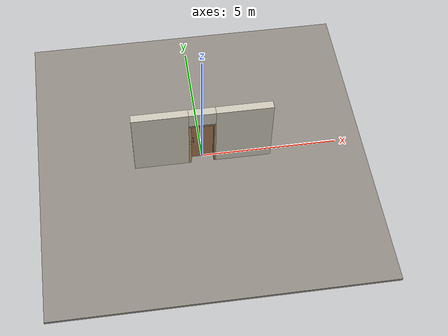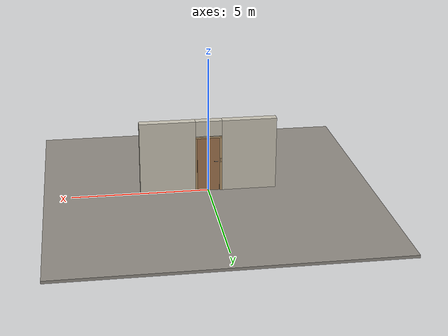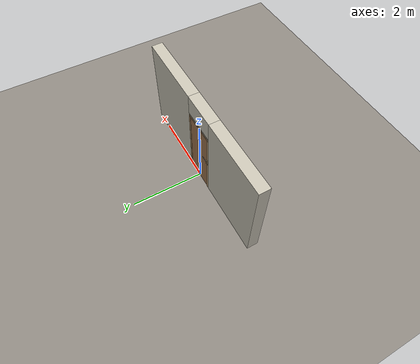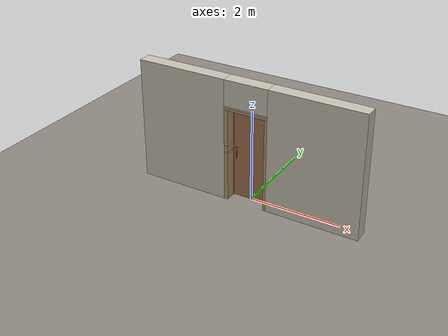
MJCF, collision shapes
<?xml version="1.0" ?>
<mujoco model="db0243_swing_single_minimal">
  <compiler angle="radian" meshdir="../../hardware" texturedir="../../textures" autolimits="true" inertiafromgeom="false"/>
  <option timestep="0.002" integrator="implicitfast" cone="elliptic" impratio="10" noslip_iterations="3">
    <flag multiccd="enable"/>
  </option>
  <size memory="16M"/>
  <default>
    <geom condim="4" solref="0.005 1" solimp="0.95 0.99 0.001"/>
    <joint solreflimit="0.005 1" solimplimit="0.95 0.99 0.001"/>
    <tendon solreflimit="0.005 1"/>
    <equality solref="0.002 1"/>
  </default>
  <visual>
    <headlight ambient="0.4 0.4 0.4" diffuse="0.7 0.7 0.7" specular="0.2 0.2 0.2"/>
    <quality shadowsize="4096"/>
    <map znear="0.01" zfar="60"/>
  </visual>
  <asset>
    <mesh name="thumb_latch_0073ea78ed" file="thumb_latch_0073ea78ed.obj"/>
    <material name="mat_floor" rgba="0.55 0.53 0.5 1" specular="0.2" shininess="0.15" reflectance="0"/>
    <material name="mat_wall" rgba="0.78 0.76 0.7 1" specular="0.2" shininess="0.1" reflectance="0"/>
    <material name="mat_leaf" rgba="0.62 0.45 0.3 1" specular="0.2" shininess="0.5" reflectance="0"/>
    <material name="mat_leaf_brace" rgba="0.558 0.405 0.27 1" specular="0.2" shininess="0.2" reflectance="0"/>
    <material name="mat_hinge" rgba="0.65 0.66 0.68 1" specular="0.74" shininess="0.5" reflectance="0.36"/>
    <material name="mat_op_wrought_iron" rgba="0.08 0.08 0.09 1" specular="0.56" shininess="0.25" reflectance="0.24"/>
    <material name="mat_frame" rgba="0.7 0.58 0.42 1" specular="0.2" shininess="0.5" reflectance="0"/>
    <material name="mat_peephole" rgba="0.85 0.66 0.3 1" specular="0.8" shininess="0.75" reflectance="0.4"/>
    <texture name="skybox" type="skybox" builtin="gradient" rgb1="0.6 0.7 0.85" rgb2="0.9 0.92 0.95" width="256" height="256"/>
  </asset>
  <worldbody>
    <light name="sun" pos="1.5 -2.5 4" dir="-0.3 0.5 -0.8" directional="true" diffuse="0.8 0.8 0.8" specular="0.3 0.3 0.3" castshadow="true"/>
    <light name="fill" pos="-1.5 2.5 3" dir="0.3 -0.5 -0.7" directional="true" diffuse="0.35 0.35 0.4" castshadow="false"/>
    <camera name="robot_view" pos="0 -2.663187 1.734312" xyaxes="1 0 0 0 0.26963 0.962964" fovy="52"/>
    <camera name="far_view" pos="0 2.421187 1.734312" xyaxes="-1 0 0 0 -0.26963 0.962964" fovy="52"/>
    <camera name="iso" pos="-1.932062 -2.256438 2.141063" xyaxes="0.741536 -0.670913 0 0.242917 0.268487 0.932151" fovy="46"/>
    <camera name="detail_handle" pos="-0.1455 -0.857 1.28" xyaxes="0.97561 0.219512 0 -0.070934 0.315262 0.94635" fovy="38"/>
    <geom name="floor" type="box" size="6 6 0.05" pos="0 0 -0.05" material="mat_floor" group="0" contype="1" conaffinity="1" friction="0.8 0.005 0.0001" density="2400"/>
    <geom name="wall_left" type="box" size="0.99975 0.15 1.35" pos="-1.50025 -0.121 1.35" material="mat_wall" group="0" contype="1" conaffinity="1" friction="0.6 0.005 0.0001" density="800"/>
    <geom name="wall_right" type="box" size="1.01475 0.15 1.35" pos="1.48525 -0.121 1.35" material="mat_wall" group="0" contype="1" conaffinity="1" friction="0.6 0.005 0.0001" density="800"/>
    <geom name="wall_header" type="box" size="0.4855 0.15 0.2825" pos="-0.015 -0.121 2.4175" material="mat_wall" group="0" contype="1" conaffinity="1" friction="0.6 0.005 0.0001" density="800"/>
    <geom name="jamb_hinge" type="box" size="0.03 0.15 1.0225" pos="0.4405 -0.121 1.0225" material="mat_frame" group="0" contype="1" conaffinity="1" friction="0.6 0.005 0.0001" density="750"/>
    <geom name="strike_1185_wall_n" type="box" size="0.045 0.1475 0.07" pos="-0.4555 -0.1235 1.185" material="mat_frame" group="0" contype="1" conaffinity="1" friction="0.6 0.005 0.0001" density="750"/>
    <geom name="strike_1185_wall_p" type="box" size="0.015 0.003 0.07" pos="-0.4255 0.047 1.185" material="mat_frame" group="0" contype="1" conaffinity="1" friction="0.6 0.005 0.0001" density="750"/>
    <geom name="strike_1185_back" type="box" size="0.035 0.01 0.07" pos="-0.4655 0.034 1.185" material="mat_frame" group="0" contype="1" conaffinity="1" friction="0.6 0.005 0.0001" density="750"/>
    <geom name="jamb_strike_0" type="box" size="0.045 0.15 0.5575" pos="-0.4555 -0.121 0.5575" material="mat_frame" group="0" contype="1" conaffinity="1" friction="0.6 0.005 0.0001" density="750"/>
    <geom name="jamb_strike_1" type="box" size="0.045 0.15 0.395" pos="-0.4555 -0.121 1.65" material="mat_frame" group="0" contype="1" conaffinity="1" friction="0.6 0.005 0.0001" density="750"/>
    <geom name="jamb_head" type="box" size="0.4855 0.15 0.03" pos="-0.015 -0.121 2.075" material="mat_frame" group="0" contype="1" conaffinity="1" friction="0.6 0.005 0.0001" density="750"/>
    <geom name="head_stud" type="box" size="0.4855 0.15 0.015" pos="-0.015 -0.121 2.12" material="mat_wall" group="0" contype="1" conaffinity="1" friction="0.6 0.005 0.0001" density="500"/>
    <geom name="stop_hinge" type="box" size="0.0055 0.016 1.0225" pos="0.405 -0.0385 1.0225" material="mat_frame" group="0" contype="1" conaffinity="1" friction="0.6 0.005 0.0001" density="750"/>
    <geom name="stop_strike" type="box" size="0.0055 0.016 1.0225" pos="-0.405 -0.0385 1.0225" material="mat_frame" group="0" contype="1" conaffinity="1" friction="0.6 0.005 0.0001" density="750"/>
    <geom name="stop_head" type="box" size="0.4105 0.016 0.0055" pos="0 -0.0385 2.0395" material="mat_frame" group="0" contype="1" conaffinity="1" friction="0.6 0.005 0.0001" density="750"/>
    <site name="approach_point" pos="0 -1.5 0" quat="1 0 0 0" size="0.05" rgba="0.2 0.9 0.2 0.5" group="4"/>
    <site name="goal_point" pos="0 1.5 0" quat="1 0 0 0" size="0.05" rgba="0.2 0.9 0.2 0.5" group="4"/>
    <site name="door_plane_center" pos="0 0 1.0225" quat="1 0 0 0" size="0.02" rgba="0.2 0.9 0.2 0.5" group="4"/>
    <body name="leaf" pos="0.4105 0 0">
      <inertial pos="-0.414547 -0.000647 1.024614" mass="52.903629" quat="0.499186 0.501031 -0.498944 0.500835" diaginertia="2.964817432 17.936348464 20.881238766"/>
      <joint name="leaf_hinge" type="hinge" axis="0 0 -1" pos="-0.003 0.029 0" limited="true" range="0 1.396263" damping="0.210326" frictionloss="8.492064" armature="0.02"/>
      <geom name="leaf_slab" type="box" size="0.4065 0.022 1.016" pos="-0.4095 0 1.025" material="mat_leaf" group="0" contype="1" conaffinity="1" friction="0.4 0.005 0.0001" density="1"/>
      <geom name="leaf_suffolk_grip" type="mesh" mesh="thumb_latch_0073ea78ed" pos="-0.736 -0.022 1" quat="0 0 -0.707107 0.707107" material="mat_op_wrought_iron" group="1" contype="0" conaffinity="0" density="7000"/>
      <geom name="leaf_suffolk_grip_col" type="capsule" size="0.008 0.09" pos="-0.736 -0.057 1" material="mat_op_wrought_iron" group="3" contype="1" conaffinity="1" rgba="0.8 0.3 0.3 0.25" friction="0.7 0.01 0.0001" density="7000"/>
      <site name="leaf_grip_n" pos="-0.736 -0.057 1" quat="1 0 0 0" size="0.012" rgba="0.2 0.9 0.2 0.5" group="4"/>
      <site name="leaf_edge_mid" pos="-0.816 0 1.016" quat="1 0 0 0" size="0.02" rgba="0.2 0.9 0.2 0.5" group="4"/>
      <body name="leaf_thumb" pos="-0.736 -0.022 1.145">
        <inertial pos="0 -0.02 0" mass="0.03528" quat="1 0 0 0" diaginertia="0.000002411 0.000002752 0.000004951"/>
        <joint name="leaf_thumb_hinge" type="hinge" axis="1 0 0" limited="true" range="0 0.3" damping="0.155346" frictionloss="0.032" stiffness="0.6" springref="-0.5" armature="0.01"/>
        <geom name="leaf_thumb_geom" type="box" size="0.015 0.014 0.003" pos="0 -0.02 0" material="mat_op_wrought_iron" group="0" contype="1" conaffinity="1" friction="0.6 0.005 0.0001" density="7000"/>
        <site name="leaf_thumb_push" pos="0 -0.024 0.005" quat="1 0 0 0" size="0.01" rgba="0.2 0.9 0.2 0.5" group="4"/>
      </body>
      <body name="leaf_latch_bar" pos="-0.616 0.034 1.14">
        <inertial pos="-0.106 0 0" mass="0.25" quat="0 0 -0.707107 0.707107" diaginertia="0.000004465 0.000904065 0.000904065"/>
        <joint name="leaf_latch_bar_hinge" type="hinge" axis="0 1 0" limited="true" range="0 0.6" damping="0.01" frictionloss="0.01" armature="0.005"/>
        <geom name="leaf_latch_bar_geom" type="capsule" size="0.006 0.1" pos="-0.106 0 0" quat="0.707107 0 -0.707107 0" material="mat_op_wrought_iron" group="0" contype="1" conaffinity="1" friction="0.6 0.005 0.0001" density="7850"/>
      </body>
    </body>
  </worldbody>
  <equality>
    <joint name="leaf_thumb_couple" joint1="leaf_latch_bar_hinge" joint2="leaf_thumb_hinge" polycoef="0 2 0 0 0" active="true"/>
  </equality>
  <sensor>
    <jointpos name="leaf_hinge_pos" joint="leaf_hinge"/>
    <jointvel name="leaf_hinge_vel" joint="leaf_hinge"/>
    <jointpos name="leaf_thumb_hinge_pos" joint="leaf_thumb_hinge"/>
    <jointvel name="leaf_thumb_hinge_vel" joint="leaf_thumb_hinge"/>
    <jointpos name="leaf_latch_bar_hinge_pos" joint="leaf_latch_bar_hinge"/>
    <jointvel name="leaf_latch_bar_hinge_vel" joint="leaf_latch_bar_hinge"/>
  </sensor>
</mujoco>
